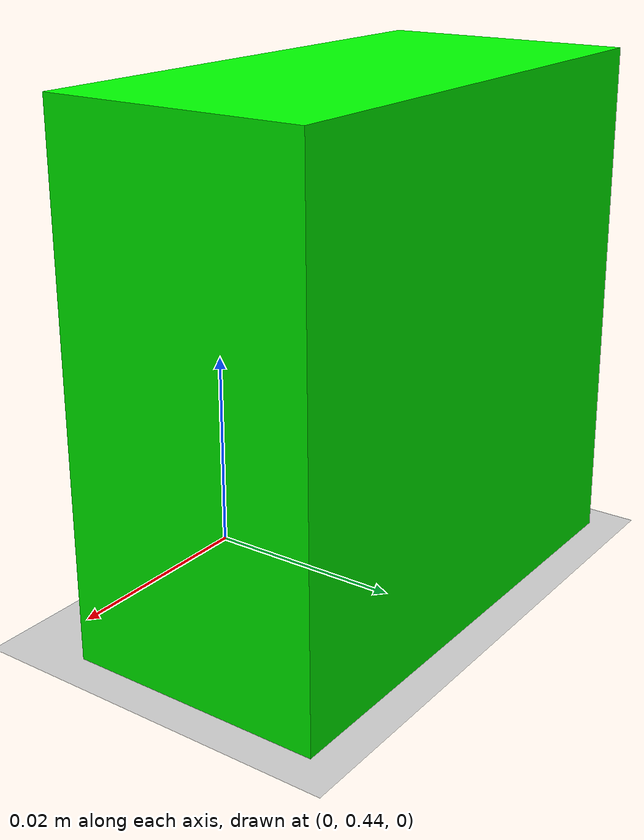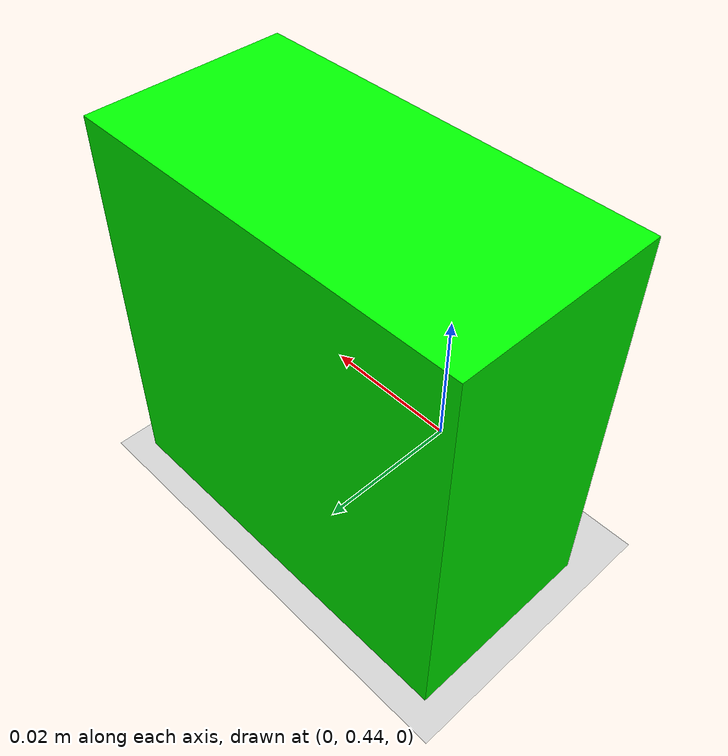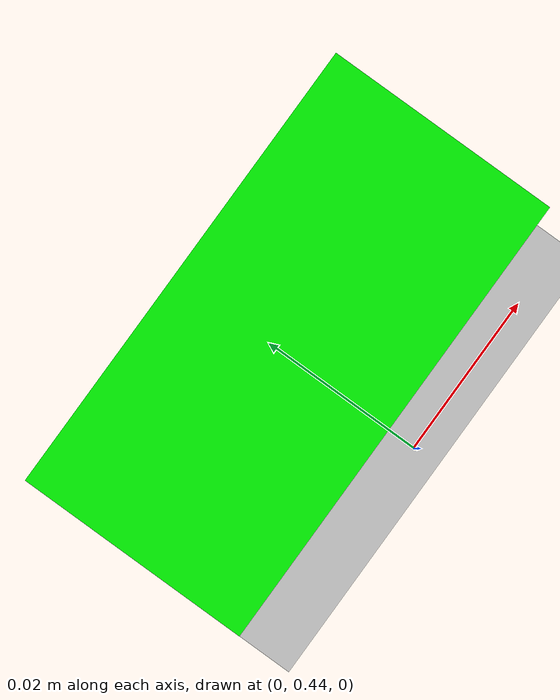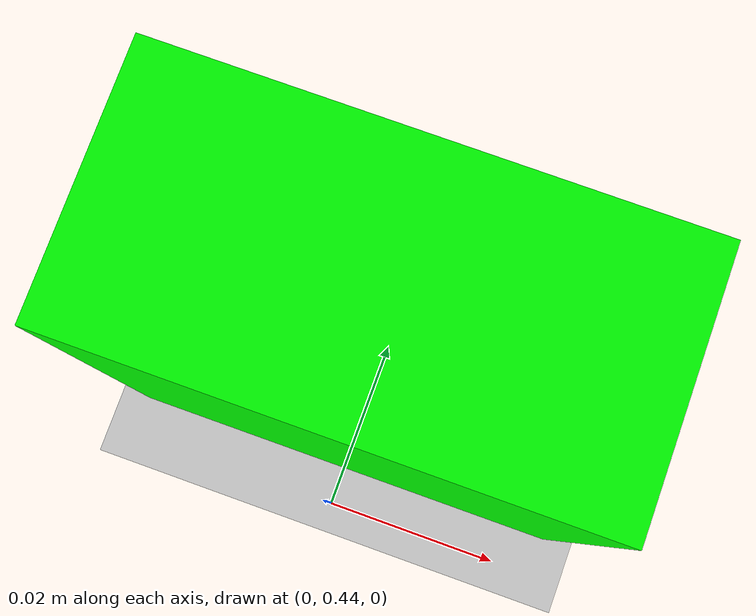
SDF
<?xml version="1.0" ?>
<sdf version="1.8">

<world name="z1_world">

    <physics name="1ms" type="ignored">
      <max_step_size>0.001</max_step_size>
      <real_time_factor>1.0</real_time_factor>
    </physics>

    <plugin filename="gz-sim-physics-system" name="gz::sim::systems::Physics"/>
    <plugin filename="gz-sim-user-commands-system" name="gz::sim::systems::UserCommands"/>
    <plugin filename="gz-sim-scene-broadcaster-system" name="gz::sim::systems::SceneBroadcaster"/>

    <!--
      Настраиваем источник света "sun" (солнечный свет) с заданным направлением,
      интенсивностью (diffuse, specular) и другими параметрами.
    -->
    <light type="directional" name="sun">
        <cast_shadows>true</cast_shadows>
        <pose>0 0 10 0 0 0</pose>
        <diffuse>0.8 0.8 0.8 1</diffuse>
        <specular>0.2 0.2 0.2 1</specular>
        <attenuation>
            <range>1000</range>
            <constant>0.9</constant>
            <linear>0.01</linear>
            <quadratic>0.001</quadratic>
        </attenuation>
        <direction>-0.5 0.1 -0.9</direction>
    </light>

    <!--
      Создаём "землю" (ground_plane) — большая плоскость для пола.
      static=true означает, что объект не участвует в движении, он статичен.
    -->
    <model name="ground_plane">
        <static>true</static>
        <link name="link">
            <collision name="collision">
            <geometry>
                <plane>
                <normal>0 0 1</normal>
                </plane>
            </geometry>
            </collision>
            <visual name="visual">
            <geometry>
                <plane>
                <normal>0 0 1</normal>
                <size>100 100</size>
                </plane>
            </geometry>
            <material>
                <ambient>0.8 0.8 0.8 1</ambient>
                <diffuse>0.8 0.8 0.8 1</diffuse>
                <specular>0.8 0.8 0.8 1</specular>
            </material>
            </visual>
        </link>
    </model>

    <!-- "green_cube" — зелёный кубик, размером 50x50x50 мм и массой 0.5 кг, -->
    <model name="green_cube">
      <pose>0 0.457 0.025 0 0 0</pose>
      <link name="cube_link">
        <inertial>
          <mass>0.5</mass>
          <inertia>
            <ixx>2.0833e-4</ixx>
            <ixy>0.0</ixy>
            <ixz>0.0</ixz>
            <iyy>2.0833e-4</iyy>
            <iyz>0.0</iyz>
            <izz>2.0833e-4</izz>
          </inertia>
        </inertial>
        <visual name="visual">
          <geometry>
            <box>
              <size>0.05 0.025 0.05</size>
            </box>
          </geometry>
          <material>
            <ambient>0 1 0 1</ambient>
            <diffuse>0 1 0 1</diffuse>
            <specular>0 1 0 1</specular>
          </material>
        </visual>
        <collision name="collision">
          <geometry>
            <box>
              <size>0.05 0.025 0.05</size>
            </box>
          </geometry>
        </collision>
      </link>
    </model>

</world>
</sdf>
